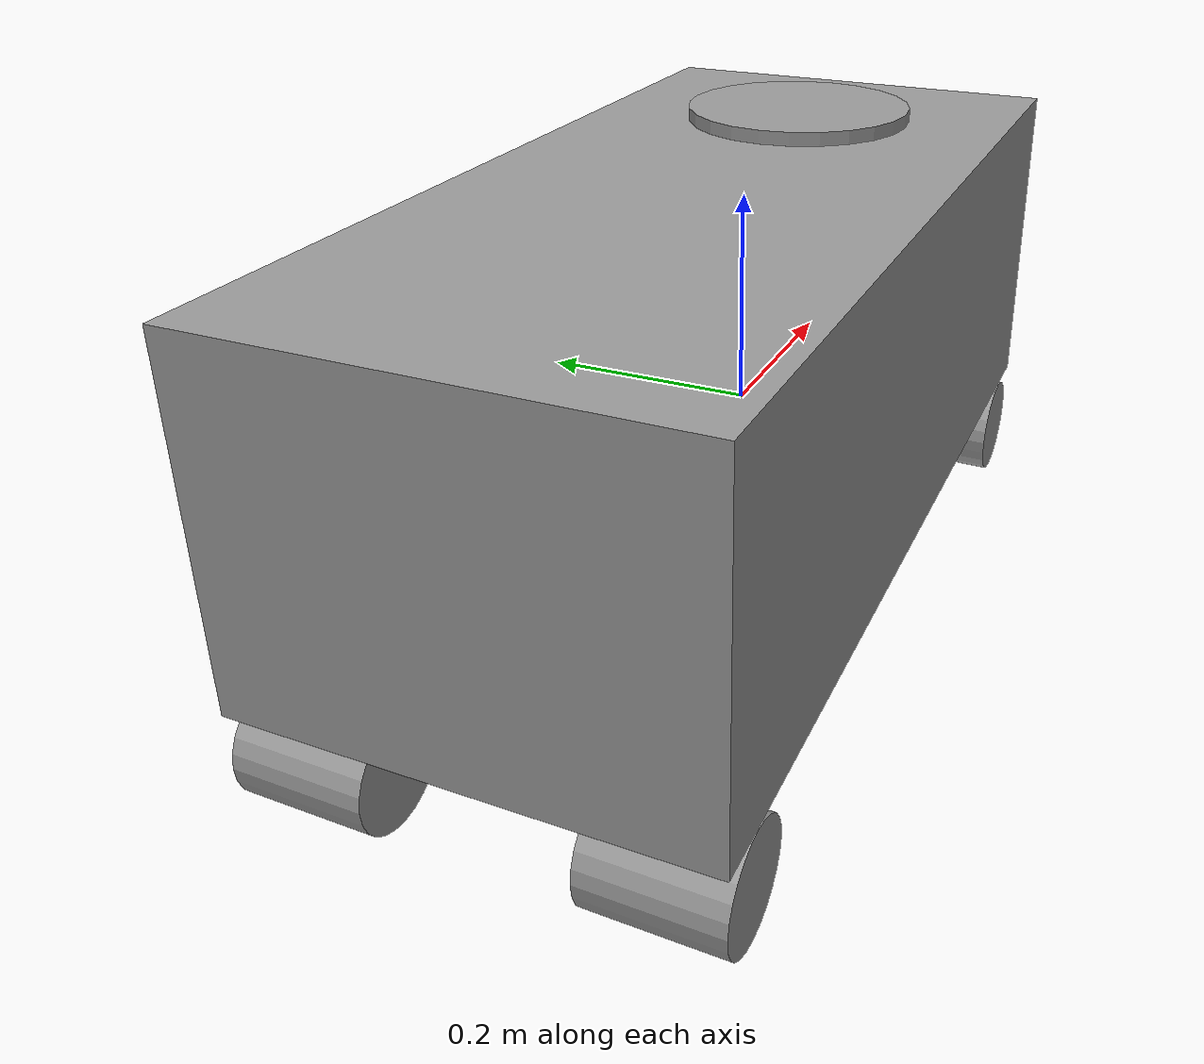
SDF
<?xml version='1.0'?>
<sdf version='1.6'>
  <model name='robot'>
    <link name='link_0'>
      <inertial>
        <mass>0.0984825</mass>
        <inertia>
          <ixx>0.00201592</ixx>
          <ixy>0</ixy>
          <ixz>0</ixz>
          <iyy>0.00638909</iyy>
          <iyz>0</iyz>
          <izz>0.00689665</izz>
        </inertia>
        <pose frame=''>0 0 0 0 -0 0</pose>
      </inertial>
      <pose frame=''>-0.09825 -0.002396 0.087025 0 -0 0</pose>
      <gravity>1</gravity>
      <self_collide>0</self_collide>
      <kinematic>0</kinematic>
      <enable_wind>0</enable_wind>
      <visual name='visual'>
        <pose frame=''>0 0 0 0 -0 0</pose>
        <geometry>
          <box>
            <size>0.828619 0.392099 0.303143</size>
          </box>
        </geometry>
        <material>
          <lighting>1</lighting>
          <script>
            <uri>file://media/materials/scripts/gazebo.material</uri>
            <name>Gazebo/Grey</name>
          </script>
          <shader type='vertex'>
            <normal_map>__default__</normal_map>
          </shader>
          <emissive>0 0 0 1</emissive>
        </material>
        <transparency>0</transparency>
        <cast_shadows>1</cast_shadows>
      </visual>
      <collision name='collision'>
        <laser_retro>0</laser_retro>
        <max_contacts>10</max_contacts>
        <pose frame=''>0 0 0 0 -0 0</pose>
        <geometry>
          <box>
            <size>0.828619 0.392099 0.303143</size>
          </box>
        </geometry>
        <surface>
          <friction>
            <ode>
              <mu>1</mu>
              <mu2>1</mu2>
              <fdir1>0 0 0</fdir1>
              <slip1>0</slip1>
              <slip2>0</slip2>
            </ode>
            <torsional>
              <coefficient>1</coefficient>
              <patch_radius>0</patch_radius>
              <surface_radius>0</surface_radius>
              <use_patch_radius>1</use_patch_radius>
              <ode>
                <slip>0</slip>
              </ode>
            </torsional>
          </friction>
          <bounce>
            <restitution_coefficient>0</restitution_coefficient>
            <threshold>1e+06</threshold>
          </bounce>
          <contact>
            <collide_without_contact>0</collide_without_contact>
            <collide_without_contact_bitmask>1</collide_without_contact_bitmask>
            <collide_bitmask>1</collide_bitmask>
            <ode>
              <soft_cfm>0</soft_cfm>
              <soft_erp>0.2</soft_erp>
              <kp>1e+13</kp>
              <kd>1</kd>
              <max_vel>0.01</max_vel>
              <min_depth>0</min_depth>
            </ode>
            <bullet>
              <split_impulse>1</split_impulse>
              <split_impulse_penetration_threshold>-0.01</split_impulse_penetration_threshold>
              <soft_cfm>0</soft_cfm>
              <soft_erp>0.2</soft_erp>
              <kp>1e+13</kp>
              <kd>1</kd>
            </bullet>
          </contact>
        </surface>
      </collision>
    </link>
    <link name='link_1_clone'>
      <inertial>
        <mass>0.0010549</mass>
        <inertia>
          <ixx>1.71838e-06</ixx>
          <ixy>0</ixy>
          <ixz>0</ixz>
          <iyy>1.71838e-06</iyy>
          <iyz>0</iyz>
          <izz>1.24666e-06</izz>
        </inertia>
        <pose frame=''>0 0 0 0 -0 0</pose>
      </inertial>
      <pose frame=''>0.267443 0.13717 -0.113943 -1.55672 0 0</pose>
      <visual name='visual'>
        <pose frame=''>0 0 0 0 -0 0</pose>
        <geometry>
          <cylinder>
            <radius>0.0486164</radius>
            <length>0.111609</length>
          </cylinder>
        </geometry>
        <material>
          <lighting>1</lighting>
          <script>
            <uri>file://media/materials/scripts/gazebo.material</uri>
            <name>Gazebo/Grey</name>
          </script>
          <emissive>0 0 0 1</emissive>
          <shader type='pixel'/>
        </material>
        <transparency>0</transparency>
        <cast_shadows>1</cast_shadows>
      </visual>
      <collision name='collision'>
        <laser_retro>0</laser_retro>
        <max_contacts>10</max_contacts>
        <pose frame=''>0 0 0 0 -0 0</pose>
        <geometry>
          <cylinder>
            <radius>0.048616</radius>
            <length>0.111609</length>
          </cylinder>
        </geometry>
        <surface>
          <friction>
            <ode>
              <mu>1</mu>
              <mu2>1</mu2>
              <fdir1>0 0 0</fdir1>
              <slip1>0</slip1>
              <slip2>0</slip2>
            </ode>
            <torsional>
              <coefficient>1</coefficient>
              <patch_radius>0</patch_radius>
              <surface_radius>0</surface_radius>
              <use_patch_radius>1</use_patch_radius>
              <ode>
                <slip>0</slip>
              </ode>
            </torsional>
          </friction>
          <bounce>
            <restitution_coefficient>0</restitution_coefficient>
            <threshold>1e+06</threshold>
          </bounce>
          <contact>
            <collide_without_contact>0</collide_without_contact>
            <collide_without_contact_bitmask>1</collide_without_contact_bitmask>
            <collide_bitmask>1</collide_bitmask>
            <ode>
              <soft_cfm>0</soft_cfm>
              <soft_erp>0.2</soft_erp>
              <kp>1e+13</kp>
              <kd>1</kd>
              <max_vel>0.01</max_vel>
              <min_depth>0</min_depth>
            </ode>
            <bullet>
              <split_impulse>1</split_impulse>
              <split_impulse_penetration_threshold>-0.01</split_impulse_penetration_threshold>
              <soft_cfm>0</soft_cfm>
              <soft_erp>0.2</soft_erp>
              <kp>1e+13</kp>
              <kd>1</kd>
            </bullet>
          </contact>
        </surface>
      </collision>
    </link>
    <link name='link_1_clone_0'>
      <inertial>
        <mass>0.0010549</mass>
        <inertia>
          <ixx>1.71838e-06</ixx>
          <ixy>0</ixy>
          <ixz>0</ixz>
          <iyy>1.71838e-06</iyy>
          <iyz>0</iyz>
          <izz>1.24666e-06</izz>
        </inertia>
        <pose frame=''>0 0 0 0 -0 0</pose>
      </inertial>
      <pose frame=''>-0.463943 0.13717 -0.113943 -1.55672 0 0</pose>
      <visual name='visual'>
        <pose frame=''>0 0 0 0 -0 0</pose>
        <geometry>
          <cylinder>
            <radius>0.0486164</radius>
            <length>0.111609</length>
          </cylinder>
        </geometry>
        <material>
          <lighting>1</lighting>
          <script>
            <uri>file://media/materials/scripts/gazebo.material</uri>
            <name>Gazebo/Grey</name>
          </script>
          <emissive>0 0 0 1</emissive>
          <shader type='pixel'/>
        </material>
        <transparency>0</transparency>
        <cast_shadows>1</cast_shadows>
      </visual>
      <collision name='collision'>
        <laser_retro>0</laser_retro>
        <max_contacts>10</max_contacts>
        <pose frame=''>0 0 0 0 -0 0</pose>
        <geometry>
          <cylinder>
            <radius>0.048616</radius>
            <length>0.111609</length>
          </cylinder>
        </geometry>
        <surface>
          <friction>
            <ode>
              <mu>1</mu>
              <mu2>1</mu2>
              <fdir1>0 0 0</fdir1>
              <slip1>0</slip1>
              <slip2>0</slip2>
            </ode>
            <torsional>
              <coefficient>1</coefficient>
              <patch_radius>0</patch_radius>
              <surface_radius>0</surface_radius>
              <use_patch_radius>1</use_patch_radius>
              <ode>
                <slip>0</slip>
              </ode>
            </torsional>
          </friction>
          <bounce>
            <restitution_coefficient>0</restitution_coefficient>
            <threshold>1e+06</threshold>
          </bounce>
          <contact>
            <collide_without_contact>0</collide_without_contact>
            <collide_without_contact_bitmask>1</collide_without_contact_bitmask>
            <collide_bitmask>1</collide_bitmask>
            <ode>
              <soft_cfm>0</soft_cfm>
              <soft_erp>0.2</soft_erp>
              <kp>1e+13</kp>
              <kd>1</kd>
              <max_vel>0.01</max_vel>
              <min_depth>0</min_depth>
            </ode>
            <bullet>
              <split_impulse>1</split_impulse>
              <split_impulse_penetration_threshold>-0.01</split_impulse_penetration_threshold>
              <soft_cfm>0</soft_cfm>
              <soft_erp>0.2</soft_erp>
              <kp>1e+13</kp>
              <kd>1</kd>
            </bullet>
          </contact>
        </surface>
      </collision>
    </link>
    <link name='link_1_clone_1'>
      <inertial>
        <mass>0.0010549</mass>
        <inertia>
          <ixx>1.71838e-06</ixx>
          <ixy>0</ixy>
          <ixz>0</ixz>
          <iyy>1.71838e-06</iyy>
          <iyz>0</iyz>
          <izz>1.24666e-06</izz>
        </inertia>
        <pose frame=''>0 0 0 0 -0 0</pose>
      </inertial>
      <pose frame=''>-0.463943 -0.141962 -0.113943 -1.55672 0 0</pose>
      <visual name='visual'>
        <pose frame=''>0 0 0 0 -0 0</pose>
        <geometry>
          <cylinder>
            <radius>0.0486164</radius>
            <length>0.111609</length>
          </cylinder>
        </geometry>
        <material>
          <lighting>1</lighting>
          <script>
            <uri>file://media/materials/scripts/gazebo.material</uri>
            <name>Gazebo/Grey</name>
          </script>
          <emissive>0 0 0 1</emissive>
          <shader type='pixel'/>
        </material>
        <transparency>0</transparency>
        <cast_shadows>1</cast_shadows>
      </visual>
      <collision name='collision'>
        <laser_retro>0</laser_retro>
        <max_contacts>10</max_contacts>
        <pose frame=''>0 0 0 0 -0 0</pose>
        <geometry>
          <cylinder>
            <radius>0.048616</radius>
            <length>0.111609</length>
          </cylinder>
        </geometry>
        <surface>
          <friction>
            <ode>
              <mu>1</mu>
              <mu2>1</mu2>
              <fdir1>0 0 0</fdir1>
              <slip1>0</slip1>
              <slip2>0</slip2>
            </ode>
            <torsional>
              <coefficient>1</coefficient>
              <patch_radius>0</patch_radius>
              <surface_radius>0</surface_radius>
              <use_patch_radius>1</use_patch_radius>
              <ode>
                <slip>0</slip>
              </ode>
            </torsional>
          </friction>
          <bounce>
            <restitution_coefficient>0</restitution_coefficient>
            <threshold>1e+06</threshold>
          </bounce>
          <contact>
            <collide_without_contact>0</collide_without_contact>
            <collide_without_contact_bitmask>1</collide_without_contact_bitmask>
            <collide_bitmask>1</collide_bitmask>
            <ode>
              <soft_cfm>0</soft_cfm>
              <soft_erp>0.2</soft_erp>
              <kp>1e+13</kp>
              <kd>1</kd>
              <max_vel>0.01</max_vel>
              <min_depth>0</min_depth>
            </ode>
            <bullet>
              <split_impulse>1</split_impulse>
              <split_impulse_penetration_threshold>-0.01</split_impulse_penetration_threshold>
              <soft_cfm>0</soft_cfm>
              <soft_erp>0.2</soft_erp>
              <kp>1e+13</kp>
              <kd>1</kd>
            </bullet>
          </contact>
        </surface>
      </collision>
    </link>
    <link name='link_1_clone_clone'>
      <inertial>
        <mass>0.0010549</mass>
        <inertia>
          <ixx>1.71838e-06</ixx>
          <ixy>0</ixy>
          <ixz>0</ixz>
          <iyy>1.71838e-06</iyy>
          <iyz>0</iyz>
          <izz>1.24666e-06</izz>
        </inertia>
        <pose frame=''>0 0 0 0 -0 0</pose>
      </inertial>
      <pose frame=''>0.267443 -0.141962 -0.115128 -1.55672 0 0</pose>
      <visual name='visual'>
        <pose frame=''>0 0 0 0 -0 0</pose>
        <geometry>
          <cylinder>
            <radius>0.0486164</radius>
            <length>0.111609</length>
          </cylinder>
        </geometry>
        <material>
          <lighting>1</lighting>
          <script>
            <uri>file://media/materials/scripts/gazebo.material</uri>
            <name>Gazebo/Grey</name>
          </script>
          <emissive>0 0 0 1</emissive>
          <shader type='pixel'/>
        </material>
        <transparency>0</transparency>
        <cast_shadows>1</cast_shadows>
      </visual>
      <collision name='collision'>
        <laser_retro>0</laser_retro>
        <max_contacts>10</max_contacts>
        <pose frame=''>0 0 0 0 -0 0</pose>
        <geometry>
          <cylinder>
            <radius>0.048616</radius>
            <length>0.111609</length>
          </cylinder>
        </geometry>
        <surface>
          <friction>
            <ode>
              <mu>1</mu>
              <mu2>1</mu2>
              <fdir1>0 0 0</fdir1>
              <slip1>0</slip1>
              <slip2>0</slip2>
            </ode>
            <torsional>
              <coefficient>1</coefficient>
              <patch_radius>0</patch_radius>
              <surface_radius>0</surface_radius>
              <use_patch_radius>1</use_patch_radius>
              <ode>
                <slip>0</slip>
              </ode>
            </torsional>
          </friction>
          <bounce>
            <restitution_coefficient>0</restitution_coefficient>
            <threshold>1e+06</threshold>
          </bounce>
          <contact>
            <collide_without_contact>0</collide_without_contact>
            <collide_without_contact_bitmask>1</collide_without_contact_bitmask>
            <collide_bitmask>1</collide_bitmask>
            <ode>
              <soft_cfm>0</soft_cfm>
              <soft_erp>0.2</soft_erp>
              <kp>1e+13</kp>
              <kd>1</kd>
              <max_vel>0.01</max_vel>
              <min_depth>0</min_depth>
            </ode>
            <bullet>
              <split_impulse>1</split_impulse>
              <split_impulse_penetration_threshold>-0.01</split_impulse_penetration_threshold>
              <soft_cfm>0</soft_cfm>
              <soft_erp>0.2</soft_erp>
              <kp>1e+13</kp>
              <kd>1</kd>
            </bullet>
          </contact>
        </surface>
      </collision>
    </link>
    <link name='link_3'>
      <inertial>
        <mass>0.00171922</mass>
        <inertia>
          <ixx>5.09528e-06</ixx>
          <ixy>0</ixy>
          <ixz>0</ixz>
          <iyy>5.09528e-06</iyy>
          <iyz>0</iyz>
          <izz>9.78189e-06</izz>
        </inertia>
        <pose frame=''>0 0 0 0 -0 0</pose>
      </inertial>
      <pose frame=''>0.140332 -0.000393 0.232404 0 -0 0</pose>
      <visual name='visual'>
        <pose frame=''>0 0 0 0 -0 0</pose>
        <geometry>
          <cylinder>
            <radius>0.106675</radius>
            <length>0.0377658</length>
          </cylinder>
        </geometry>
        <material>
          <lighting>1</lighting>
          <script>
            <uri>file://media/materials/scripts/gazebo.material</uri>
            <name>Gazebo/Grey</name>
          </script>
        </material>
        <transparency>0</transparency>
        <cast_shadows>1</cast_shadows>
      </visual>
      <collision name='collision'>
        <laser_retro>0</laser_retro>
        <max_contacts>10</max_contacts>
        <pose frame=''>0 0 0 0 -0 0</pose>
        <geometry>
          <cylinder>
            <radius>0.106675</radius>
            <length>0.037766</length>
          </cylinder>
        </geometry>
        <surface>
          <friction>
            <ode>
              <mu>1</mu>
              <mu2>1</mu2>
              <fdir1>0 0 0</fdir1>
              <slip1>0</slip1>
              <slip2>0</slip2>
            </ode>
            <torsional>
              <coefficient>1</coefficient>
              <patch_radius>0</patch_radius>
              <surface_radius>0</surface_radius>
              <use_patch_radius>1</use_patch_radius>
              <ode>
                <slip>0</slip>
              </ode>
            </torsional>
          </friction>
          <bounce>
            <restitution_coefficient>0</restitution_coefficient>
            <threshold>1e+06</threshold>
          </bounce>
          <contact>
            <collide_without_contact>0</collide_without_contact>
            <collide_without_contact_bitmask>1</collide_without_contact_bitmask>
            <collide_bitmask>1</collide_bitmask>
            <ode>
              <soft_cfm>0</soft_cfm>
              <soft_erp>0.2</soft_erp>
              <kp>1e+13</kp>
              <kd>1</kd>
              <max_vel>0.01</max_vel>
              <min_depth>0</min_depth>
            </ode>
            <bullet>
              <split_impulse>1</split_impulse>
              <split_impulse_penetration_threshold>-0.01</split_impulse_penetration_threshold>
              <soft_cfm>0</soft_cfm>
              <soft_erp>0.2</soft_erp>
              <kp>1e+13</kp>
              <kd>1</kd>
            </bullet>
          </contact>
        </surface>
      </collision>
    </link>
    <link name='link_4'>
      <inertial>
        <mass>0.00042937</mass>
        <inertia>
          <ixx>4.06729e-07</ixx>
          <ixy>0</ixy>
          <ixz>0</ixz>
          <iyy>3.90527e-07</iyy>
          <iyz>0</iyz>
          <izz>4.27439e-07</izz>
        </inertia>
        <pose frame=''>0 0 0 0 -0 0</pose>
      </inertial>
      <pose frame=''>0.350923 0.01237 0.137526 0 -0 0</pose>
      <visual name='visual'>
        <pose frame=''>0 0 0 0 -0 0</pose>
        <geometry>
          <box>
            <size>0.075806 0.078736 0.071887</size>
          </box>
        </geometry>
        <material>
          <lighting>1</lighting>
          <script>
            <uri>file://media/materials/scripts/gazebo.material</uri>
            <name>Gazebo/Grey</name>
          </script>
        </material>
        <transparency>0</transparency>
        <cast_shadows>1</cast_shadows>
      </visual>
      <collision name='collision'>
        <laser_retro>0</laser_retro>
        <max_contacts>10</max_contacts>
        <pose frame=''>0 0 0 0 -0 0</pose>
        <geometry>
          <box>
            <size>0.075806 0.078736 0.071887</size>
          </box>
        </geometry>
        <surface>
          <friction>
            <ode>
              <mu>1</mu>
              <mu2>1</mu2>
              <fdir1>0 0 0</fdir1>
              <slip1>0</slip1>
              <slip2>0</slip2>
            </ode>
            <torsional>
              <coefficient>1</coefficient>
              <patch_radius>0</patch_radius>
              <surface_radius>0</surface_radius>
              <use_patch_radius>1</use_patch_radius>
              <ode>
                <slip>0</slip>
              </ode>
            </torsional>
          </friction>
          <bounce>
            <restitution_coefficient>0</restitution_coefficient>
            <threshold>1e+06</threshold>
          </bounce>
          <contact>
            <collide_without_contact>0</collide_without_contact>
            <collide_without_contact_bitmask>1</collide_without_contact_bitmask>
            <collide_bitmask>1</collide_bitmask>
            <ode>
              <soft_cfm>0</soft_cfm>
              <soft_erp>0.2</soft_erp>
              <kp>1e+13</kp>
              <kd>1</kd>
              <max_vel>0.01</max_vel>
              <min_depth>0</min_depth>
            </ode>
            <bullet>
              <split_impulse>1</split_impulse>
              <split_impulse_penetration_threshold>-0.01</split_impulse_penetration_threshold>
              <soft_cfm>0</soft_cfm>
              <soft_erp>0.2</soft_erp>
              <kp>1e+13</kp>
              <kd>1</kd>
            </bullet>
          </contact>
        </surface>
      </collision>
    </link>
    <joint name='link_0_JOINT_3' type='revolute'>
      <parent>link_0</parent>
      <child>link_1_clone_clone</child>
      <pose frame=''>0 0 0 0 -0 0</pose>
      <axis>
        <xyz>0 0 1</xyz>
        <use_parent_model_frame>0</use_parent_model_frame>
        <limit>
          <lower>-1.79769e+308</lower>
          <upper>1.79769e+308</upper>
          <effort>-1</effort>
          <velocity>-1</velocity>
        </limit>
        <dynamics>
          <spring_reference>0</spring_reference>
          <spring_stiffness>0</spring_stiffness>
          <damping>0</damping>
        </dynamics>
      </axis>
      <physics>
        <ode>
          <limit>
            <cfm>0</cfm>
            <erp>0.2</erp>
          </limit>
          <suspension>
            <cfm>0</cfm>
            <erp>0.2</erp>
          </suspension>
        </ode>
      </physics>
    </joint>
    <joint name='link_0_JOINT_4' type='revolute'>
      <parent>link_0</parent>
      <child>link_1_clone</child>
      <pose frame=''>0 0 0 0 -0 0</pose>
      <axis>
        <xyz>0 0 1</xyz>
        <use_parent_model_frame>0</use_parent_model_frame>
        <limit>
          <lower>-1.79769e+308</lower>
          <upper>1.79769e+308</upper>
          <effort>-1</effort>
          <velocity>-1</velocity>
        </limit>
        <dynamics>
          <spring_reference>0</spring_reference>
          <spring_stiffness>0</spring_stiffness>
          <damping>0</damping>
        </dynamics>
      </axis>
      <physics>
        <ode>
          <limit>
            <cfm>0</cfm>
            <erp>0.2</erp>
          </limit>
          <suspension>
            <cfm>0</cfm>
            <erp>0.2</erp>
          </suspension>
        </ode>
      </physics>
    </joint>
    <joint name='link_0_JOINT_5' type='revolute'>
      <parent>link_0</parent>
      <child>link_1_clone_0</child>
      <pose frame=''>0 0 0 0 -0 0</pose>
      <axis>
        <xyz>0 0 1</xyz>
        <use_parent_model_frame>0</use_parent_model_frame>
        <limit>
          <lower>-1.79769e+308</lower>
          <upper>1.79769e+308</upper>
          <effort>-1</effort>
          <velocity>-1</velocity>
        </limit>
        <dynamics>
          <spring_reference>0</spring_reference>
          <spring_stiffness>0</spring_stiffness>
          <damping>0</damping>
        </dynamics>
      </axis>
      <physics>
        <ode>
          <limit>
            <cfm>0</cfm>
            <erp>0.2</erp>
          </limit>
          <suspension>
            <cfm>0</cfm>
            <erp>0.2</erp>
          </suspension>
        </ode>
      </physics>
    </joint>
    <joint name='link_0_JOINT_6' type='revolute'>
      <parent>link_0</parent>
      <child>link_1_clone_1</child>
      <pose frame=''>0 0 0 0 -0 0</pose>
      <axis>
        <xyz>0 0 1</xyz>
        <use_parent_model_frame>0</use_parent_model_frame>
        <limit>
          <lower>-1.79769e+308</lower>
          <upper>1.79769e+308</upper>
          <effort>-1</effort>
          <velocity>-1</velocity>
        </limit>
        <dynamics>
          <spring_reference>0</spring_reference>
          <spring_stiffness>0</spring_stiffness>
          <damping>0</damping>
        </dynamics>
      </axis>
      <physics>
        <ode>
          <limit>
            <cfm>0</cfm>
            <erp>0.2</erp>
          </limit>
          <suspension>
            <cfm>0</cfm>
            <erp>0.2</erp>
          </suspension>
        </ode>
      </physics>
    </joint>
    <static>0</static>
    <allow_auto_disable>1</allow_auto_disable>
  </model>
</sdf>
